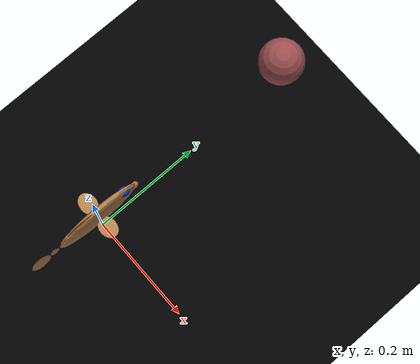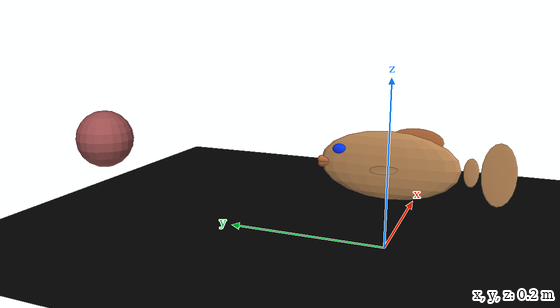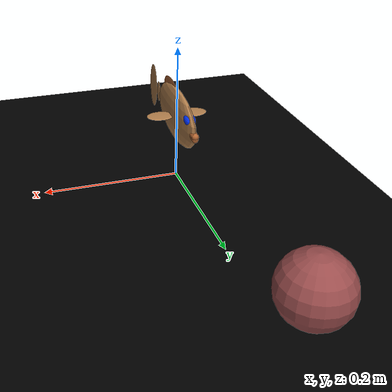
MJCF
<mujoco model="fish">
  <include file="./visual.xml"/>
  <include file="./materials.xml"/>
  <asset>
      <texture name="skybox" type="skybox" builtin="gradient" rgb1=".4 .6 .8" rgb2="0 0 0" width="800" height="800" mark="random" markrgb="1 1 1"/>
  </asset>

  <option timestep="0.004" density="5000">
    <flag gravity="disable" constraint="disable"/>
  </option>

  <default>
    <general ctrllimited="true"/>
    <default class="fish">
      <joint type="hinge" limited="false" range="-60 60" damping="2e-5" solreflimit=".1 1" solimplimit="0 .8 .1"/>
      <geom material="self"/>
    </default>
  </default>

  <worldbody>
    <camera name="tracking_top" pos="0 0 1" xyaxes="1 0 0 0 1 0" mode="trackcom"/>
    <camera name="tracking_x" pos="-.3 0 .2" xyaxes="0 -1 0 0.342 0 0.940" fovy="60" mode="trackcom"/>
    <camera name="tracking_y" pos="0 -.3 .2" xyaxes="1 0 0 0 0.342 0.940" fovy="60" mode="trackcom"/>
    <camera name="fixed_top" pos="0 0 5.5" fovy="10"/>
    <geom name="ground" type="plane" size=".5 .5 .1" material="grid"/>
    <geom name="target" type="sphere" pos="0 .4 .1" size=".04" material="target"/>
    <body name="torso" pos="0 0 .1" childclass="fish">
      <light name="light" diffuse=".6 .6 .6" pos="0 0 0.5" dir="0 0 -1" specular=".3 .3 .3" mode="track"/>
      <joint name="root" type="free" damping="0" limited="false"/>
      <site name="torso" size=".01" rgba="0 0 0 0"/>
      <geom name="eye" type="ellipsoid" pos="0 .055 .015" size=".008 .012 .008" euler="-10 0 0" material="eye" mass="0"/>
      <camera name="eye" pos="0 .06 .02" xyaxes="1 0 0 0 0 1"/>
      <geom name="mouth" type="capsule" fromto="0 .079 0 0 .07 0" size=".005" material="effector" mass="0"/>
      <geom name="lower_mouth" type="capsule" fromto="0 .079 -.004 0 .07 -.003" size=".0045" material="effector" mass="0"/>
      <geom name="torso" type="ellipsoid" size=".01 .08 .04" mass="0"/>
      <geom name="back_fin" type="ellipsoid" size=".001 .03 .015" pos="0 -.03 .03" material="effector" mass="0"/>
      <geom name="torso_massive" type="box" size=".002 .06 .03" group="4"/>
      <body name="tail1" pos="0 -.09 0">
        <joint name="tail1" axis="0 0 1" pos="0 .01 0"/>
        <joint name="tail_twist" axis="0 1 0" pos="0 .01 0" range="-30 30"/>
        <geom name="tail1" type="ellipsoid" size=".001 .008 .016"/>
        <body name="tail2" pos="0 -.028 0">
          <joint name="tail2" axis="0 0 1" pos="0 .02 0" stiffness="8e-5"/>
          <geom name="tail2" type="ellipsoid" size=".001 .018 .035"/>
        </body>
      </body>
      <body name="finright" pos=".01 0 0">
        <joint name="finright_roll" axis="0 1 0"/>
        <joint name="finright_pitch" axis="1 0 0" pos="0 .005 0"/>
        <geom name="finright" type="ellipsoid" pos=".015 0 0" size=".02 .015 .001"  />
      </body>
      <body name="finleft" pos="-.01 0 0">
        <joint name="finleft_roll" axis="0 1 0"/>
        <joint name="finleft_pitch" axis="1 0 0" pos="0 .005 0"/>
        <geom name="finleft" type="ellipsoid"  pos="-.015 0 0" size=".02 .015 .001"/>
      </body>
    </body>
  </worldbody>

  <tendon>
    <fixed name="fins_flap">
      <joint joint="finleft_roll"  coef="-.5"/>
      <joint joint="finright_roll" coef=".5"/>
    </fixed>
    <fixed name="fins_sym" stiffness="1e-4">
      <joint joint="finleft_roll"  coef=".5"/>
      <joint joint="finright_roll" coef=".5"/>
    </fixed>
  </tendon>

  <actuator>
    <position name="tail"           joint="tail1"           ctrlrange="-1 1"    kp="5e-4"/>
    <position name="tail_twist"     joint="tail_twist"      ctrlrange="-1 1"    kp="1e-4"/>
    <position name="fins_flap"      tendon="fins_flap"      ctrlrange="-1 1"    kp="3e-4"/>
    <position name="finleft_pitch"  joint="finleft_pitch"   ctrlrange="-1 1"    kp="1e-4"/>
    <position name="finright_pitch" joint="finright_pitch"  ctrlrange="-1 1"    kp="1e-4"/>
  </actuator>

  <sensor>
    <velocimeter name="velocimeter" site="torso"/>
    <gyro name="gyro" site="torso"/>
  </sensor>
</mujoco>

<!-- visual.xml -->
<mujoco>
  <visual>
    <headlight ambient=".0 .0 .0" diffuse=".8 .8 .8" specular="0.1 0.1 0.1" active="1"/>
    <map znear=".01"/>
    <quality shadowsize="0"/>
  </visual>
</mujoco>

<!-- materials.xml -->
<!--
Common textures, colors and materials to be used throughout this suite. Some
materials such as xxx_highlight are activated on occurence of certain events,
for example receiving a positive reward.
-->
<mujoco>
  <asset>
    <texture name="grid" type="2d" builtin="flat" rgb1="0 0 0" rgb2="0 0 0" width="100" height="100" mark="edge" markrgb="0 0 0"/>
    <material name="grid" texture="grid" texrepeat="1 1" texuniform="true" reflectance=".0"/>
    <material name="self" rgba=".7 .5 .3 1"/>
    <material name="self_default" rgba=".7 .5 .3 1"/>
    <material name="self_highlight" rgba="0 .5 .3 1"/>
    <material name="effector" rgba=".7 .4 .2 1"/>
    <material name="effector_default" rgba=".7 .4 .2 1"/>
    <material name="effector_highlight" rgba="0 .5 .3 1"/>
    <material name="decoration" rgba=".3 .5 .7 1"/>
    <material name="eye" rgba="0 .2 1 1"/>
    <material name="target" rgba=".6 .3 .3 1"/>
    <material name="target_default" rgba=".6 .3 .3 1"/>
    <material name="target_highlight" rgba=".6 .3 .3 .4"/>
    <material name="site" rgba=".5 .5 .5 .3"/>
  </asset>
</mujoco>
